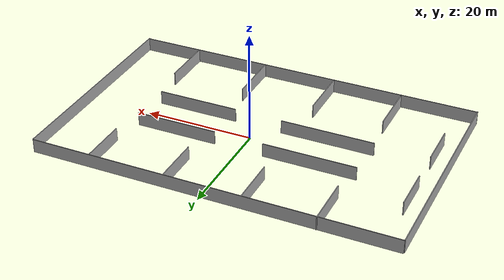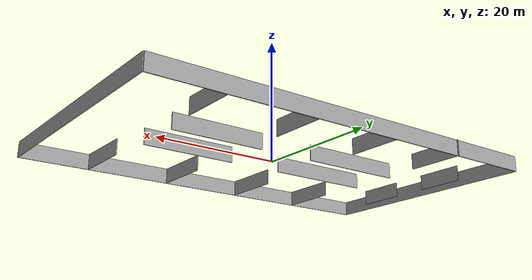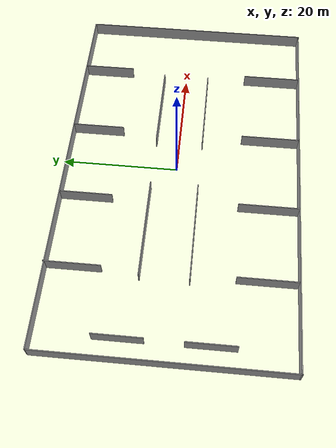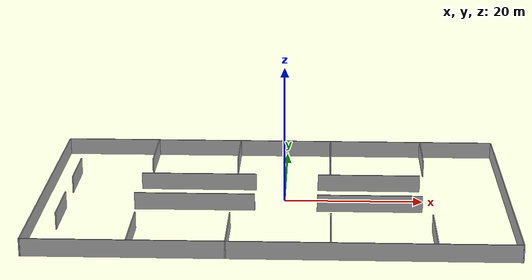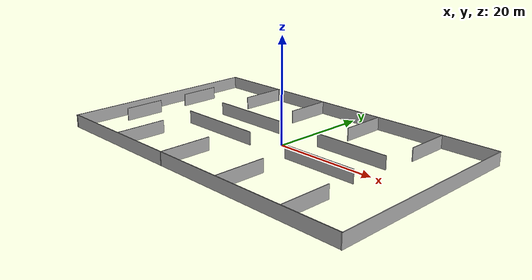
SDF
<?xml version='1.0'?>
<sdf version='1.7'>
  <model name='wall'>
    <pose>-1.34561 -0.906507 0 0 -0 0</pose>
    <link name='Wall_0'>
      <collision name='Wall_0_Collision'>
        <geometry>
          <box>
            <size>66.25 0.15 2.5</size>
          </box>
        </geometry>
        <pose>0 0 1.25 0 -0 0</pose>
      </collision>
      <visual name='Wall_0_Visual'>
        <pose>0 0 1.25 0 -0 0</pose>
        <geometry>
          <box>
            <size>66.25 0.15 2.5</size>
          </box>
        </geometry>
        <material>
          <script>
            <uri>file://media/materials/scripts/gazebo.material</uri>
            <name>Gazebo/Grey</name>
          </script>
          <ambient>1 1 1 1</ambient>
        </material>
        <meta>
          <layer>0</layer>
        </meta>
      </visual>
      <pose>-0.015129 20.0708 0 0 -0 3.14159</pose>
    </link>
    <link name='Wall_11'>
      <collision name='Wall_11_Collision'>
        <geometry>
          <box>
            <size>9 0.15 2.5</size>
          </box>
        </geometry>
        <pose>0 0 1.25 0 -0 0</pose>
      </collision>
      <visual name='Wall_11_Visual'>
        <pose>0 0 1.25 0 -0 0</pose>
        <geometry>
          <box>
            <size>9 0.15 2.5</size>
          </box>
        </geometry>
        <material>
          <script>
            <uri>file://media/materials/scripts/gazebo.material</uri>
            <name>Gazebo/Grey</name>
          </script>
          <ambient>1 1 1 1</ambient>
        </material>
        <meta>
          <layer>0</layer>
        </meta>
      </visual>
      <pose>8.02399 15.5962 0 0 -0 -1.5708</pose>
    </link>
    <link name='Wall_13'>
      <collision name='Wall_13_Collision'>
        <geometry>
          <box>
            <size>8.75 0.15 2.5</size>
          </box>
        </geometry>
        <pose>0 0 1.25 0 -0 0</pose>
      </collision>
      <visual name='Wall_13_Visual'>
        <pose>0 0 1.25 0 -0 0</pose>
        <geometry>
          <box>
            <size>8.75 0.15 2.5</size>
          </box>
        </geometry>
        <material>
          <script>
            <uri>file://media/materials/scripts/gazebo.material</uri>
            <name>Gazebo/Grey</name>
          </script>
          <ambient>1 1 1 1</ambient>
        </material>
        <meta>
          <layer>0</layer>
        </meta>
      </visual>
      <pose>22.0288 15.5381 0 0 -0 1.5708</pose>
    </link>
    <link name='Wall_15'>
      <collision name='Wall_15_Collision'>
        <geometry>
          <box>
            <size>17 0.15 2.5</size>
          </box>
        </geometry>
        <pose>0 0 1.25 0 -0 0</pose>
      </collision>
      <visual name='Wall_15_Visual'>
        <pose>0 0 1.25 0 -0 0</pose>
        <geometry>
          <box>
            <size>17 0.15 2.5</size>
          </box>
        </geometry>
        <material>
          <script>
            <uri>file://media/materials/scripts/gazebo.material</uri>
            <name>Gazebo/Grey</name>
          </script>
          <ambient>1 1 1 1</ambient>
        </material>
        <meta>
          <layer>0</layer>
        </meta>
      </visual>
      <pose>-11.416 5.02582 0 0 -0 3.14159</pose>
    </link>
    <link name='Wall_17'>
      <collision name='Wall_17_Collision'>
        <geometry>
          <box>
            <size>15 0.15 2.5</size>
          </box>
        </geometry>
        <pose>0 0 1.25 0 -0 0</pose>
      </collision>
      <visual name='Wall_17_Visual'>
        <pose>0 0 1.25 0 -0 0</pose>
        <geometry>
          <box>
            <size>15 0.15 2.5</size>
          </box>
        </geometry>
        <material>
          <script>
            <uri>file://media/materials/scripts/gazebo.material</uri>
            <name>Gazebo/Grey</name>
          </script>
          <ambient>1 1 1 1</ambient>
        </material>
        <meta>
          <layer>0</layer>
        </meta>
      </visual>
      <pose>13.6394 5.02582 0 0 -0 0</pose>
    </link>
    <link name='Wall_19'>
      <collision name='Wall_19_Collision'>
        <geometry>
          <box>
            <size>17.25 0.15 2.5</size>
          </box>
        </geometry>
        <pose>0 0 1.25 0 -0 0</pose>
      </collision>
      <visual name='Wall_19_Visual'>
        <pose>0 0 1.25 0 -0 0</pose>
        <geometry>
          <box>
            <size>17.25 0.15 2.5</size>
          </box>
        </geometry>
        <material>
          <script>
            <uri>file://media/materials/scripts/gazebo.material</uri>
            <name>Gazebo/Grey</name>
          </script>
          <ambient>1 1 1 1</ambient>
        </material>
        <meta>
          <layer>0</layer>
        </meta>
      </visual>
      <pose>-11.437 -3.02173 0 0 -0 0</pose>
    </link>
    <link name='Wall_2'>
      <collision name='Wall_2_Collision'>
        <geometry>
          <box>
            <size>40.25 0.15 2.5</size>
          </box>
        </geometry>
        <pose>0 0 1.25 0 -0 0</pose>
      </collision>
      <visual name='Wall_2_Visual'>
        <pose>0 0 1.25 0 -0 0</pose>
        <geometry>
          <box>
            <size>40.25 0.15 2.5</size>
          </box>
        </geometry>
        <material>
          <script>
            <uri>file://media/materials/scripts/gazebo.material</uri>
            <name>Gazebo/Grey</name>
          </script>
          <ambient>1 1 1 1</ambient>
        </material>
        <meta>
          <layer>0</layer>
        </meta>
      </visual>
      <pose>-33.1589 -0.156986 0 0 -0 1.5708</pose>
    </link>
    <link name='Wall_21'>
      <collision name='Wall_21_Collision'>
        <geometry>
          <box>
            <size>15 0.15 2.5</size>
          </box>
        </geometry>
        <pose>0 0 1.25 0 -0 0</pose>
      </collision>
      <visual name='Wall_21_Visual'>
        <pose>0 0 1.25 0 -0 0</pose>
        <geometry>
          <box>
            <size>15 0.15 2.5</size>
          </box>
        </geometry>
        <material>
          <script>
            <uri>file://media/materials/scripts/gazebo.material</uri>
            <name>Gazebo/Grey</name>
          </script>
          <ambient>1 1 1 1</ambient>
        </material>
        <meta>
          <layer>0</layer>
        </meta>
      </visual>
      <pose>13.5458 -3.11531 0 0 -0 0</pose>
    </link>
    <link name='Wall_23'>
      <collision name='Wall_23_Collision'>
        <geometry>
          <box>
            <size>9.75 0.15 2.5</size>
          </box>
        </geometry>
        <pose>0 0 1.25 0 -0 0</pose>
      </collision>
      <visual name='Wall_23_Visual'>
        <pose>0 0 1.25 0 -0 0</pose>
        <geometry>
          <box>
            <size>9.75 0.15 2.5</size>
          </box>
        </geometry>
        <material>
          <script>
            <uri>file://media/materials/scripts/gazebo.material</uri>
            <name>Gazebo/Grey</name>
          </script>
          <ambient>1 1 1 1</ambient>
        </material>
        <meta>
          <layer>0</layer>
        </meta>
      </visual>
      <pose>-19.0512 -15.0816 0 0 -0 -1.5708</pose>
    </link>
    <link name='Wall_25'>
      <collision name='Wall_25_Collision'>
        <geometry>
          <box>
            <size>10.25 0.15 2.5</size>
          </box>
        </geometry>
        <pose>0 0 1.25 0 -0 0</pose>
      </collision>
      <visual name='Wall_25_Visual'>
        <pose>0 0 1.25 0 -0 0</pose>
        <geometry>
          <box>
            <size>10.25 0.15 2.5</size>
          </box>
        </geometry>
        <material>
          <script>
            <uri>file://media/materials/scripts/gazebo.material</uri>
            <name>Gazebo/Grey</name>
          </script>
          <ambient>1 1 1 1</ambient>
        </material>
        <meta>
          <layer>0</layer>
        </meta>
      </visual>
      <pose>-5.95053 -15.0738 0 0 -0 1.5708</pose>
    </link>
    <link name='Wall_27'>
      <collision name='Wall_27_Collision'>
        <geometry>
          <box>
            <size>10 0.15 2.5</size>
          </box>
        </geometry>
        <pose>0 0 1.25 0 -0 0</pose>
      </collision>
      <visual name='Wall_27_Visual'>
        <pose>0 0 1.25 0 -0 0</pose>
        <geometry>
          <box>
            <size>10 0.15 2.5</size>
          </box>
        </geometry>
        <material>
          <script>
            <uri>file://media/materials/scripts/gazebo.material</uri>
            <name>Gazebo/Grey</name>
          </script>
          <ambient>1 1 1 1</ambient>
        </material>
        <meta>
          <layer>0</layer>
        </meta>
      </visual>
      <pose>7.99232 -15.0061 0 0 -0 1.5708</pose>
    </link>
    <link name='Wall_29'>
      <collision name='Wall_29_Collision'>
        <geometry>
          <box>
            <size>10 0.15 2.5</size>
          </box>
        </geometry>
        <pose>0 0 1.25 0 -0 0</pose>
      </collision>
      <visual name='Wall_29_Visual'>
        <pose>0 0 1.25 0 -0 0</pose>
        <geometry>
          <box>
            <size>10 0.15 2.5</size>
          </box>
        </geometry>
        <material>
          <script>
            <uri>file://media/materials/scripts/gazebo.material</uri>
            <name>Gazebo/Grey</name>
          </script>
          <ambient>1 1 1 1</ambient>
        </material>
        <meta>
          <layer>0</layer>
        </meta>
      </visual>
      <pose>22.0288 -15.0061 0 0 -0 1.5708</pose>
    </link>
    <link name='Wall_31'>
      <collision name='Wall_31_Collision'>
        <geometry>
          <box>
            <size>8 0.15 2.5</size>
          </box>
        </geometry>
        <pose>0 0 1.25 0 -0 0</pose>
      </collision>
      <visual name='Wall_31_Visual'>
        <pose>0 0 1.25 0 -0 0</pose>
        <geometry>
          <box>
            <size>8 0.15 2.5</size>
          </box>
        </geometry>
        <material>
          <script>
            <uri>file://media/materials/scripts/gazebo.material</uri>
            <name>Gazebo/Grey</name>
          </script>
          <ambient>1 1 1 1</ambient>
        </material>
        <meta>
          <layer>0</layer>
        </meta>
      </visual>
      <pose>-29.9367 7.01483 0 0 -0 -1.5708</pose>
    </link>
    <link name='Wall_33'>
      <collision name='Wall_33_Collision'>
        <geometry>
          <box>
            <size>8 0.15 2.5</size>
          </box>
        </geometry>
        <pose>0 0 1.25 0 -0 0</pose>
      </collision>
      <visual name='Wall_33_Visual'>
        <pose>0 0 1.25 0 -0 0</pose>
        <geometry>
          <box>
            <size>8 0.15 2.5</size>
          </box>
        </geometry>
        <material>
          <script>
            <uri>file://media/materials/scripts/gazebo.material</uri>
            <name>Gazebo/Grey</name>
          </script>
          <ambient>1 1 1 1</ambient>
        </material>
        <meta>
          <layer>0</layer>
        </meta>
      </visual>
      <pose>-29.9419 -7.01853 0 0 -0 -1.5708</pose>
    </link>
    <link name='Wall_4'>
      <collision name='Wall_4_Collision'>
        <geometry>
          <box>
            <size>66.4679 0.15 2.5</size>
          </box>
        </geometry>
        <pose>0 0 1.25 0 -0 0</pose>
      </collision>
      <visual name='Wall_4_Visual'>
        <pose>0 0 1.25 0 -0 0</pose>
        <geometry>
          <box>
            <size>66.4679 0.15 2.5</size>
          </box>
        </geometry>
        <material>
          <script>
            <uri>file://media/materials/scripts/gazebo.material</uri>
            <name>Gazebo/Grey</name>
          </script>
          <ambient>1 1 1 1</ambient>
        </material>
        <meta>
          <layer>0</layer>
        </meta>
      </visual>
      <pose>0 -20.1134 0 0 -0 0</pose>
    </link>
    <link name='Wall_5'>
      <collision name='Wall_5_Collision'>
        <geometry>
          <box>
            <size>40.25 0.15 2.5</size>
          </box>
        </geometry>
        <pose>0 0 1.25 0 -0 0</pose>
      </collision>
      <visual name='Wall_5_Visual'>
        <pose>0 0 1.25 0 -0 0</pose>
        <geometry>
          <box>
            <size>40.25 0.15 2.5</size>
          </box>
        </geometry>
        <material>
          <script>
            <uri>file://media/materials/scripts/gazebo.material</uri>
            <name>Gazebo/Grey</name>
          </script>
          <ambient>1 1 1 1</ambient>
        </material>
        <meta>
          <layer>0</layer>
        </meta>
      </visual>
      <pose>33.1589 -0.156986 0 0 -0 1.5708</pose>
    </link>
    <link name='Wall_7'>
      <collision name='Wall_7_Collision'>
        <geometry>
          <box>
            <size>9.25 0.15 2.5</size>
          </box>
        </geometry>
        <pose>0 0 1.25 0 -0 0</pose>
      </collision>
      <visual name='Wall_7_Visual'>
        <pose>0 0 1.25 0 -0 0</pose>
        <geometry>
          <box>
            <size>9.25 0.15 2.5</size>
          </box>
        </geometry>
        <material>
          <script>
            <uri>file://media/materials/scripts/gazebo.material</uri>
            <name>Gazebo/Grey</name>
          </script>
          <ambient>1 1 1 1</ambient>
        </material>
        <meta>
          <layer>0</layer>
        </meta>
      </visual>
      <pose>-18.9861 15.657 0 0 -0 1.5708</pose>
    </link>
    <link name='Wall_9'>
      <collision name='Wall_9_Collision'>
        <geometry>
          <box>
            <size>9 0.15 2.5</size>
          </box>
        </geometry>
        <pose>0 0 1.25 0 -0 0</pose>
      </collision>
      <visual name='Wall_9_Visual'>
        <pose>0 0 1.25 0 -0 0</pose>
        <geometry>
          <box>
            <size>9 0.15 2.5</size>
          </box>
        </geometry>
        <material>
          <script>
            <uri>file://media/materials/scripts/gazebo.material</uri>
            <name>Gazebo/Grey</name>
          </script>
          <ambient>1 1 1 1</ambient>
        </material>
        <meta>
          <layer>0</layer>
        </meta>
      </visual>
      <pose>-6.05631 15.6259 0 0 -0 -1.5708</pose>
    </link>
    <static>1</static>
  </model>
</sdf>
